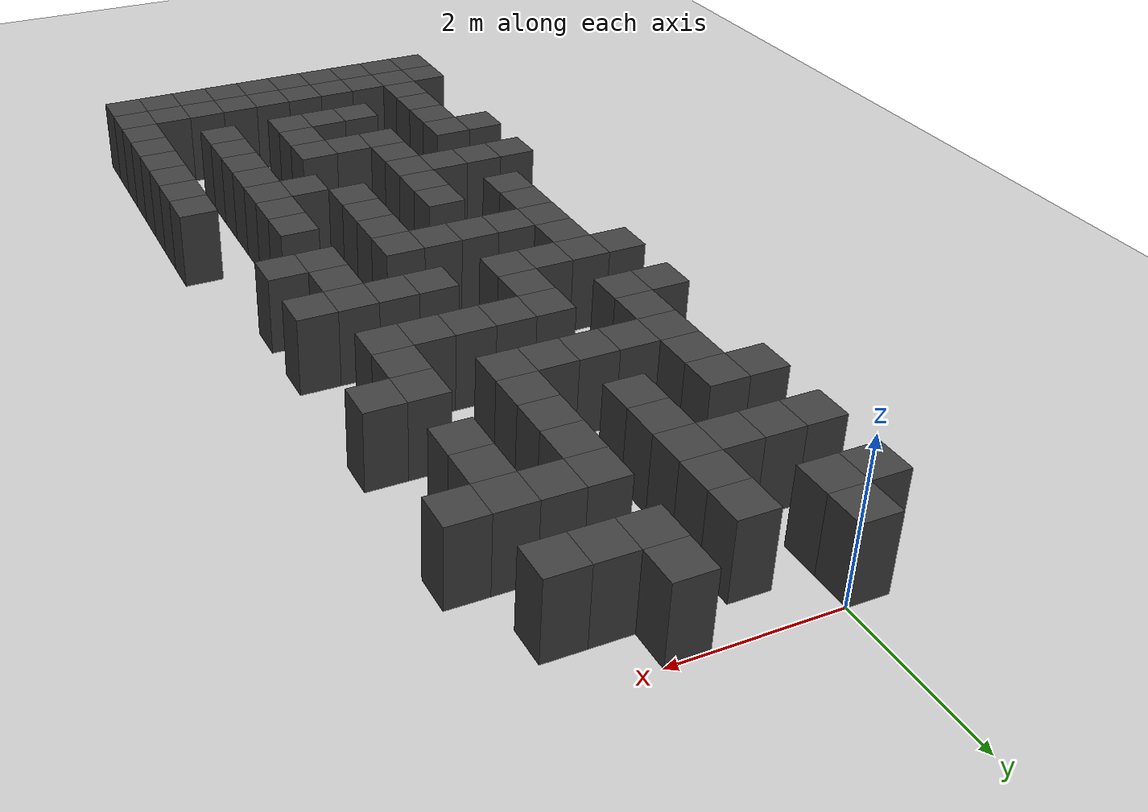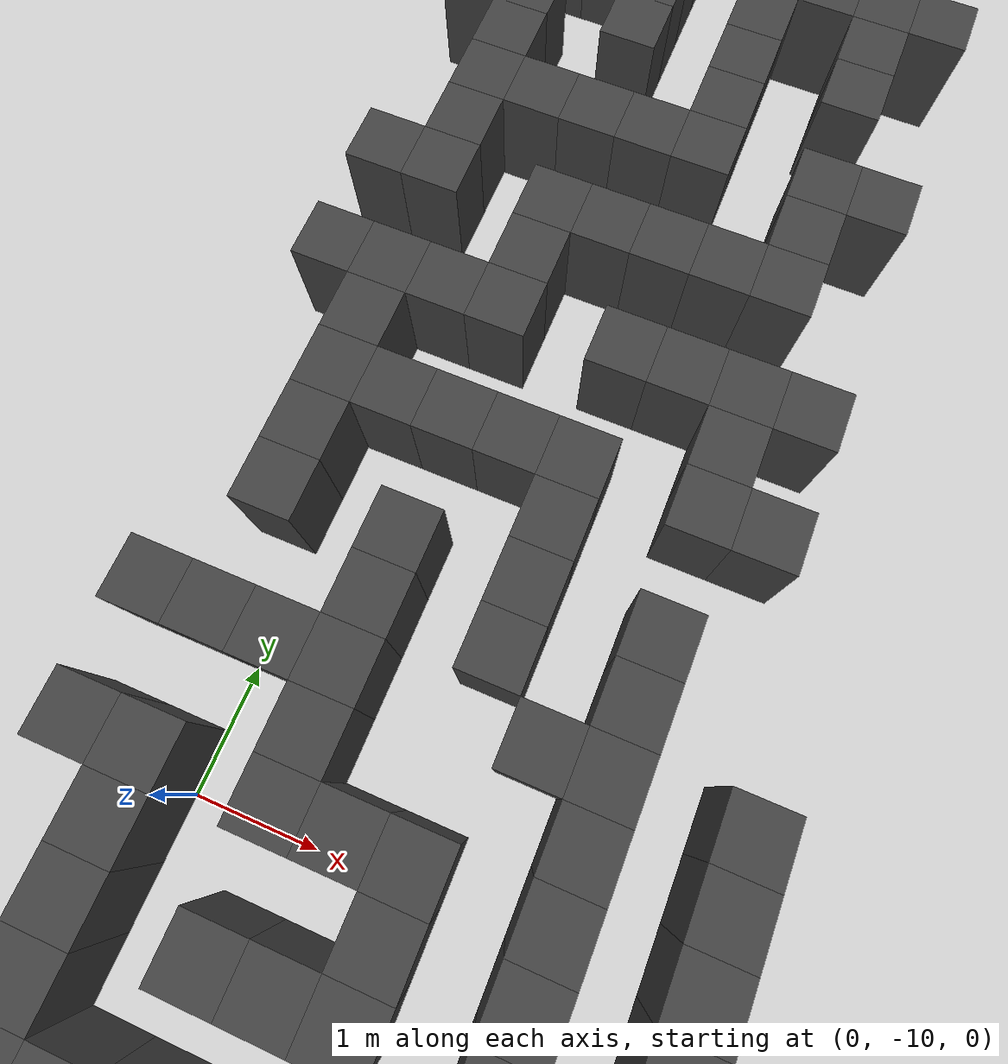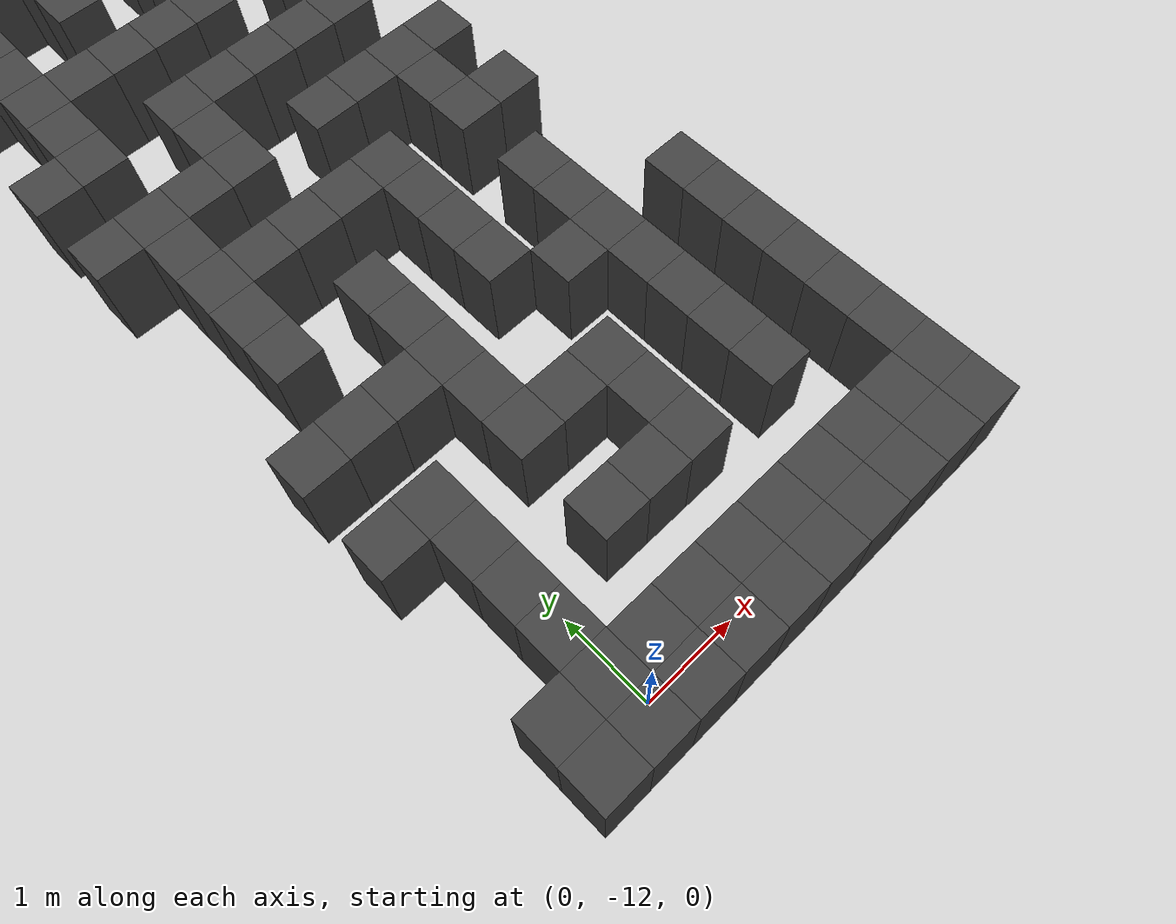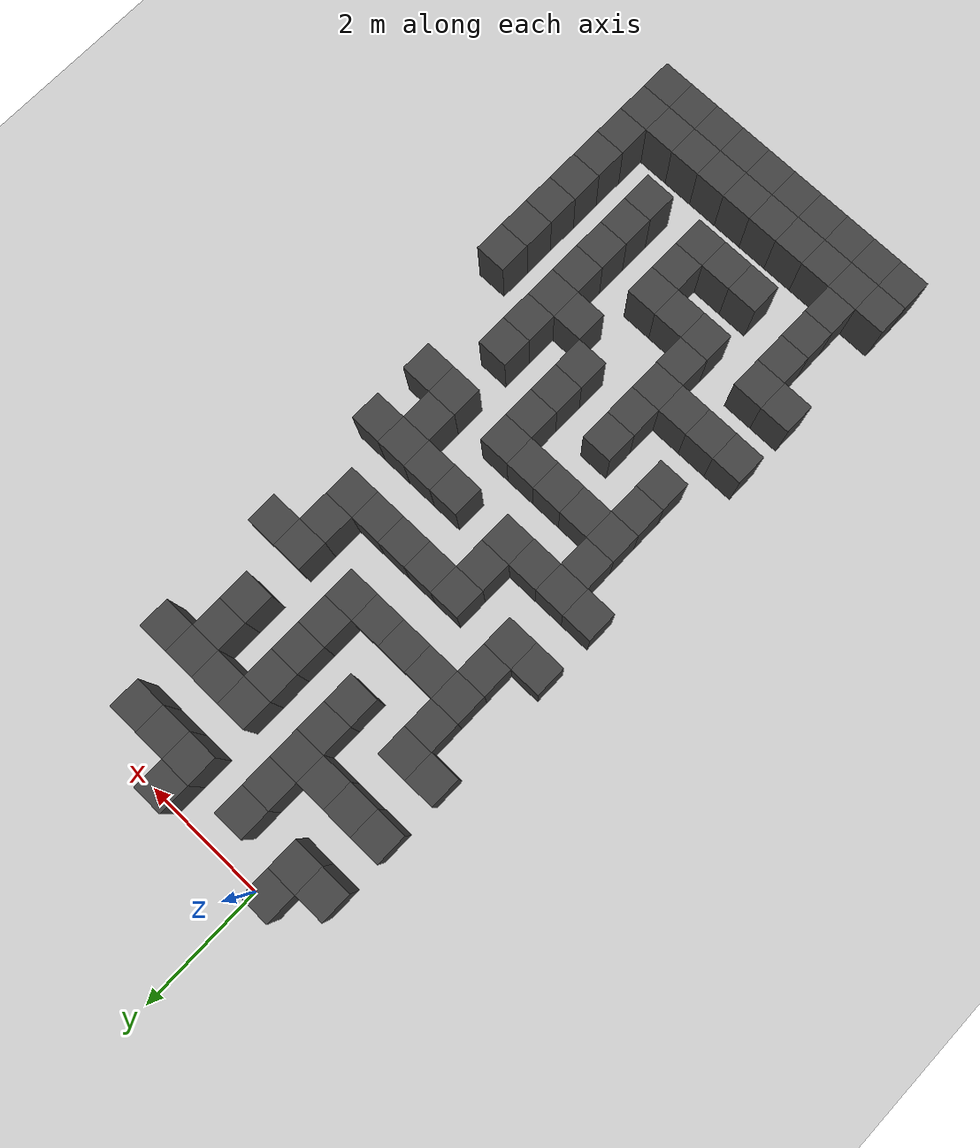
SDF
<sdf version="1.7">
 <world name="map_18814">
  <model name="ground_plane">
   <static>true</static>
   <link name="link">
    <collision name="collision">
     <geometry><plane><normal>0 0 1</normal><size>200 200</size></plane></geometry>
    </collision>
    <visual name="visual">
     <geometry><plane><normal>0 0 1</normal><size>200 200</size></plane></geometry>
     <material><ambient>0.8 0.8 0.8 1</ambient><diffuse>0.8 0.8 0.8 1</diffuse></material>
    </visual>
   </link>
  </model>
  <model name="maze_environment">
   <static>true</static>
   <link name="wall_654">
    <pose>-0.250 -0.250 0.500 0 0 0</pose>
    <collision name="col"><geometry><box><size>0.5 0.5 1.0</size></box></geometry></collision>
    <visual name="vis">
     <geometry><box><size>0.5 0.5 1.0</size></box></geometry>
     <material><ambient>0.15 0.15 0.15 1</ambient><diffuse>0.25 0.25 0.25 1</diffuse></material>
    </visual>
   </link>
   <link name="wall_655">
    <pose>1.750 -0.250 0.500 0 0 0</pose>
    <collision name="col"><geometry><box><size>0.5 0.5 1.0</size></box></geometry></collision>
    <visual name="vis">
     <geometry><box><size>0.5 0.5 1.0</size></box></geometry>
     <material><ambient>0.15 0.15 0.15 1</ambient><diffuse>0.25 0.25 0.25 1</diffuse></material>
    </visual>
   </link>
   <link name="wall_676">
    <pose>-0.750 -0.750 0.500 0 0 0</pose>
    <collision name="col"><geometry><box><size>0.5 0.5 1.0</size></box></geometry></collision>
    <visual name="vis">
     <geometry><box><size>0.5 0.5 1.0</size></box></geometry>
     <material><ambient>0.15 0.15 0.15 1</ambient><diffuse>0.25 0.25 0.25 1</diffuse></material>
    </visual>
   </link>
   <link name="wall_677">
    <pose>-0.250 -0.750 0.500 0 0 0</pose>
    <collision name="col"><geometry><box><size>0.5 0.5 1.0</size></box></geometry></collision>
    <visual name="vis">
     <geometry><box><size>0.5 0.5 1.0</size></box></geometry>
     <material><ambient>0.15 0.15 0.15 1</ambient><diffuse>0.25 0.25 0.25 1</diffuse></material>
    </visual>
   </link>
   <link name="wall_678">
    <pose>0.750 -0.750 0.500 0 0 0</pose>
    <collision name="col"><geometry><box><size>0.5 0.5 1.0</size></box></geometry></collision>
    <visual name="vis">
     <geometry><box><size>0.5 0.5 1.0</size></box></geometry>
     <material><ambient>0.15 0.15 0.15 1</ambient><diffuse>0.25 0.25 0.25 1</diffuse></material>
    </visual>
   </link>
   <link name="wall_679">
    <pose>1.750 -0.750 0.500 0 0 0</pose>
    <collision name="col"><geometry><box><size>0.5 0.5 1.0</size></box></geometry></collision>
    <visual name="vis">
     <geometry><box><size>0.5 0.5 1.0</size></box></geometry>
     <material><ambient>0.15 0.15 0.15 1</ambient><diffuse>0.25 0.25 0.25 1</diffuse></material>
    </visual>
   </link>
   <link name="wall_680">
    <pose>2.250 -0.750 0.500 0 0 0</pose>
    <collision name="col"><geometry><box><size>0.5 0.5 1.0</size></box></geometry></collision>
    <visual name="vis">
     <geometry><box><size>0.5 0.5 1.0</size></box></geometry>
     <material><ambient>0.15 0.15 0.15 1</ambient><diffuse>0.25 0.25 0.25 1</diffuse></material>
    </visual>
   </link>
   <link name="wall_681">
    <pose>2.750 -0.750 0.500 0 0 0</pose>
    <collision name="col"><geometry><box><size>0.5 0.5 1.0</size></box></geometry></collision>
    <visual name="vis">
     <geometry><box><size>0.5 0.5 1.0</size></box></geometry>
     <material><ambient>0.15 0.15 0.15 1</ambient><diffuse>0.25 0.25 0.25 1</diffuse></material>
    </visual>
   </link>
   <link name="wall_704">
    <pose>0.750 -1.250 0.500 0 0 0</pose>
    <collision name="col"><geometry><box><size>0.5 0.5 1.0</size></box></geometry></collision>
    <visual name="vis">
     <geometry><box><size>0.5 0.5 1.0</size></box></geometry>
     <material><ambient>0.15 0.15 0.15 1</ambient><diffuse>0.25 0.25 0.25 1</diffuse></material>
    </visual>
   </link>
   <link name="wall_727">
    <pose>-0.750 -1.750 0.500 0 0 0</pose>
    <collision name="col"><geometry><box><size>0.5 0.5 1.0</size></box></geometry></collision>
    <visual name="vis">
     <geometry><box><size>0.5 0.5 1.0</size></box></geometry>
     <material><ambient>0.15 0.15 0.15 1</ambient><diffuse>0.25 0.25 0.25 1</diffuse></material>
    </visual>
   </link>
   <link name="wall_728">
    <pose>-0.250 -1.750 0.500 0 0 0</pose>
    <collision name="col"><geometry><box><size>0.5 0.5 1.0</size></box></geometry></collision>
    <visual name="vis">
     <geometry><box><size>0.5 0.5 1.0</size></box></geometry>
     <material><ambient>0.15 0.15 0.15 1</ambient><diffuse>0.25 0.25 0.25 1</diffuse></material>
    </visual>
   </link>
   <link name="wall_729">
    <pose>0.250 -1.750 0.500 0 0 0</pose>
    <collision name="col"><geometry><box><size>0.5 0.5 1.0</size></box></geometry></collision>
    <visual name="vis">
     <geometry><box><size>0.5 0.5 1.0</size></box></geometry>
     <material><ambient>0.15 0.15 0.15 1</ambient><diffuse>0.25 0.25 0.25 1</diffuse></material>
    </visual>
   </link>
   <link name="wall_730">
    <pose>0.750 -1.750 0.500 0 0 0</pose>
    <collision name="col"><geometry><box><size>0.5 0.5 1.0</size></box></geometry></collision>
    <visual name="vis">
     <geometry><box><size>0.5 0.5 1.0</size></box></geometry>
     <material><ambient>0.15 0.15 0.15 1</ambient><diffuse>0.25 0.25 0.25 1</diffuse></material>
    </visual>
   </link>
   <link name="wall_731">
    <pose>1.750 -1.750 0.500 0 0 0</pose>
    <collision name="col"><geometry><box><size>0.5 0.5 1.0</size></box></geometry></collision>
    <visual name="vis">
     <geometry><box><size>0.5 0.5 1.0</size></box></geometry>
     <material><ambient>0.15 0.15 0.15 1</ambient><diffuse>0.25 0.25 0.25 1</diffuse></material>
    </visual>
   </link>
   <link name="wall_732">
    <pose>2.250 -1.750 0.500 0 0 0</pose>
    <collision name="col"><geometry><box><size>0.5 0.5 1.0</size></box></geometry></collision>
    <visual name="vis">
     <geometry><box><size>0.5 0.5 1.0</size></box></geometry>
     <material><ambient>0.15 0.15 0.15 1</ambient><diffuse>0.25 0.25 0.25 1</diffuse></material>
    </visual>
   </link>
   <link name="wall_733">
    <pose>2.750 -1.750 0.500 0 0 0</pose>
    <collision name="col"><geometry><box><size>0.5 0.5 1.0</size></box></geometry></collision>
    <visual name="vis">
     <geometry><box><size>0.5 0.5 1.0</size></box></geometry>
     <material><ambient>0.15 0.15 0.15 1</ambient><diffuse>0.25 0.25 0.25 1</diffuse></material>
    </visual>
   </link>
   <link name="wall_734">
    <pose>3.250 -1.750 0.500 0 0 0</pose>
    <collision name="col"><geometry><box><size>0.5 0.5 1.0</size></box></geometry></collision>
    <visual name="vis">
     <geometry><box><size>0.5 0.5 1.0</size></box></geometry>
     <material><ambient>0.15 0.15 0.15 1</ambient><diffuse>0.25 0.25 0.25 1</diffuse></material>
    </visual>
   </link>
   <link name="wall_753">
    <pose>0.750 -2.250 0.500 0 0 0</pose>
    <collision name="col"><geometry><box><size>0.5 0.5 1.0</size></box></geometry></collision>
    <visual name="vis">
     <geometry><box><size>0.5 0.5 1.0</size></box></geometry>
     <material><ambient>0.15 0.15 0.15 1</ambient><diffuse>0.25 0.25 0.25 1</diffuse></material>
    </visual>
   </link>
   <link name="wall_754">
    <pose>1.750 -2.250 0.500 0 0 0</pose>
    <collision name="col"><geometry><box><size>0.5 0.5 1.0</size></box></geometry></collision>
    <visual name="vis">
     <geometry><box><size>0.5 0.5 1.0</size></box></geometry>
     <material><ambient>0.15 0.15 0.15 1</ambient><diffuse>0.25 0.25 0.25 1</diffuse></material>
    </visual>
   </link>
   <link name="wall_755">
    <pose>2.750 -2.250 0.500 0 0 0</pose>
    <collision name="col"><geometry><box><size>0.5 0.5 1.0</size></box></geometry></collision>
    <visual name="vis">
     <geometry><box><size>0.5 0.5 1.0</size></box></geometry>
     <material><ambient>0.15 0.15 0.15 1</ambient><diffuse>0.25 0.25 0.25 1</diffuse></material>
    </visual>
   </link>
   <link name="wall_783">
    <pose>-0.750 -2.750 0.500 0 0 0</pose>
    <collision name="col"><geometry><box><size>0.5 0.5 1.0</size></box></geometry></collision>
    <visual name="vis">
     <geometry><box><size>0.5 0.5 1.0</size></box></geometry>
     <material><ambient>0.15 0.15 0.15 1</ambient><diffuse>0.25 0.25 0.25 1</diffuse></material>
    </visual>
   </link>
   <link name="wall_784">
    <pose>-0.250 -2.750 0.500 0 0 0</pose>
    <collision name="col"><geometry><box><size>0.5 0.5 1.0</size></box></geometry></collision>
    <visual name="vis">
     <geometry><box><size>0.5 0.5 1.0</size></box></geometry>
     <material><ambient>0.15 0.15 0.15 1</ambient><diffuse>0.25 0.25 0.25 1</diffuse></material>
    </visual>
   </link>
   <link name="wall_785">
    <pose>0.750 -2.750 0.500 0 0 0</pose>
    <collision name="col"><geometry><box><size>0.5 0.5 1.0</size></box></geometry></collision>
    <visual name="vis">
     <geometry><box><size>0.5 0.5 1.0</size></box></geometry>
     <material><ambient>0.15 0.15 0.15 1</ambient><diffuse>0.25 0.25 0.25 1</diffuse></material>
    </visual>
   </link>
   <link name="wall_786">
    <pose>1.750 -2.750 0.500 0 0 0</pose>
    <collision name="col"><geometry><box><size>0.5 0.5 1.0</size></box></geometry></collision>
    <visual name="vis">
     <geometry><box><size>0.5 0.5 1.0</size></box></geometry>
     <material><ambient>0.15 0.15 0.15 1</ambient><diffuse>0.25 0.25 0.25 1</diffuse></material>
    </visual>
   </link>
   <link name="wall_787">
    <pose>2.750 -2.750 0.500 0 0 0</pose>
    <collision name="col"><geometry><box><size>0.5 0.5 1.0</size></box></geometry></collision>
    <visual name="vis">
     <geometry><box><size>0.5 0.5 1.0</size></box></geometry>
     <material><ambient>0.15 0.15 0.15 1</ambient><diffuse>0.25 0.25 0.25 1</diffuse></material>
    </visual>
   </link>
   <link name="wall_805">
    <pose>-0.250 -3.250 0.500 0 0 0</pose>
    <collision name="col"><geometry><box><size>0.5 0.5 1.0</size></box></geometry></collision>
    <visual name="vis">
     <geometry><box><size>0.5 0.5 1.0</size></box></geometry>
     <material><ambient>0.15 0.15 0.15 1</ambient><diffuse>0.25 0.25 0.25 1</diffuse></material>
    </visual>
   </link>
   <link name="wall_806">
    <pose>1.750 -3.250 0.500 0 0 0</pose>
    <collision name="col"><geometry><box><size>0.5 0.5 1.0</size></box></geometry></collision>
    <visual name="vis">
     <geometry><box><size>0.5 0.5 1.0</size></box></geometry>
     <material><ambient>0.15 0.15 0.15 1</ambient><diffuse>0.25 0.25 0.25 1</diffuse></material>
    </visual>
   </link>
   <link name="wall_829">
    <pose>-0.250 -3.750 0.500 0 0 0</pose>
    <collision name="col"><geometry><box><size>0.5 0.5 1.0</size></box></geometry></collision>
    <visual name="vis">
     <geometry><box><size>0.5 0.5 1.0</size></box></geometry>
     <material><ambient>0.15 0.15 0.15 1</ambient><diffuse>0.25 0.25 0.25 1</diffuse></material>
    </visual>
   </link>
   <link name="wall_830">
    <pose>0.250 -3.750 0.500 0 0 0</pose>
    <collision name="col"><geometry><box><size>0.5 0.5 1.0</size></box></geometry></collision>
    <visual name="vis">
     <geometry><box><size>0.5 0.5 1.0</size></box></geometry>
     <material><ambient>0.15 0.15 0.15 1</ambient><diffuse>0.25 0.25 0.25 1</diffuse></material>
    </visual>
   </link>
   <link name="wall_831">
    <pose>0.750 -3.750 0.500 0 0 0</pose>
    <collision name="col"><geometry><box><size>0.5 0.5 1.0</size></box></geometry></collision>
    <visual name="vis">
     <geometry><box><size>0.5 0.5 1.0</size></box></geometry>
     <material><ambient>0.15 0.15 0.15 1</ambient><diffuse>0.25 0.25 0.25 1</diffuse></material>
    </visual>
   </link>
   <link name="wall_832">
    <pose>1.250 -3.750 0.500 0 0 0</pose>
    <collision name="col"><geometry><box><size>0.5 0.5 1.0</size></box></geometry></collision>
    <visual name="vis">
     <geometry><box><size>0.5 0.5 1.0</size></box></geometry>
     <material><ambient>0.15 0.15 0.15 1</ambient><diffuse>0.25 0.25 0.25 1</diffuse></material>
    </visual>
   </link>
   <link name="wall_833">
    <pose>1.750 -3.750 0.500 0 0 0</pose>
    <collision name="col"><geometry><box><size>0.5 0.5 1.0</size></box></geometry></collision>
    <visual name="vis">
     <geometry><box><size>0.5 0.5 1.0</size></box></geometry>
     <material><ambient>0.15 0.15 0.15 1</ambient><diffuse>0.25 0.25 0.25 1</diffuse></material>
    </visual>
   </link>
   <link name="wall_834">
    <pose>2.750 -3.750 0.500 0 0 0</pose>
    <collision name="col"><geometry><box><size>0.5 0.5 1.0</size></box></geometry></collision>
    <visual name="vis">
     <geometry><box><size>0.5 0.5 1.0</size></box></geometry>
     <material><ambient>0.15 0.15 0.15 1</ambient><diffuse>0.25 0.25 0.25 1</diffuse></material>
    </visual>
   </link>
   <link name="wall_835">
    <pose>3.250 -3.750 0.500 0 0 0</pose>
    <collision name="col"><geometry><box><size>0.5 0.5 1.0</size></box></geometry></collision>
    <visual name="vis">
     <geometry><box><size>0.5 0.5 1.0</size></box></geometry>
     <material><ambient>0.15 0.15 0.15 1</ambient><diffuse>0.25 0.25 0.25 1</diffuse></material>
    </visual>
   </link>
   <link name="wall_856">
    <pose>-0.250 -4.250 0.500 0 0 0</pose>
    <collision name="col"><geometry><box><size>0.5 0.5 1.0</size></box></geometry></collision>
    <visual name="vis">
     <geometry><box><size>0.5 0.5 1.0</size></box></geometry>
     <material><ambient>0.15 0.15 0.15 1</ambient><diffuse>0.25 0.25 0.25 1</diffuse></material>
    </visual>
   </link>
   <link name="wall_857">
    <pose>2.750 -4.250 0.500 0 0 0</pose>
    <collision name="col"><geometry><box><size>0.5 0.5 1.0</size></box></geometry></collision>
    <visual name="vis">
     <geometry><box><size>0.5 0.5 1.0</size></box></geometry>
     <material><ambient>0.15 0.15 0.15 1</ambient><diffuse>0.25 0.25 0.25 1</diffuse></material>
    </visual>
   </link>
   <link name="wall_878">
    <pose>-0.750 -4.750 0.500 0 0 0</pose>
    <collision name="col"><geometry><box><size>0.5 0.5 1.0</size></box></geometry></collision>
    <visual name="vis">
     <geometry><box><size>0.5 0.5 1.0</size></box></geometry>
     <material><ambient>0.15 0.15 0.15 1</ambient><diffuse>0.25 0.25 0.25 1</diffuse></material>
    </visual>
   </link>
   <link name="wall_879">
    <pose>-0.250 -4.750 0.500 0 0 0</pose>
    <collision name="col"><geometry><box><size>0.5 0.5 1.0</size></box></geometry></collision>
    <visual name="vis">
     <geometry><box><size>0.5 0.5 1.0</size></box></geometry>
     <material><ambient>0.15 0.15 0.15 1</ambient><diffuse>0.25 0.25 0.25 1</diffuse></material>
    </visual>
   </link>
   <link name="wall_880">
    <pose>0.750 -4.750 0.500 0 0 0</pose>
    <collision name="col"><geometry><box><size>0.5 0.5 1.0</size></box></geometry></collision>
    <visual name="vis">
     <geometry><box><size>0.5 0.5 1.0</size></box></geometry>
     <material><ambient>0.15 0.15 0.15 1</ambient><diffuse>0.25 0.25 0.25 1</diffuse></material>
    </visual>
   </link>
   <link name="wall_881">
    <pose>1.250 -4.750 0.500 0 0 0</pose>
    <collision name="col"><geometry><box><size>0.5 0.5 1.0</size></box></geometry></collision>
    <visual name="vis">
     <geometry><box><size>0.5 0.5 1.0</size></box></geometry>
     <material><ambient>0.15 0.15 0.15 1</ambient><diffuse>0.25 0.25 0.25 1</diffuse></material>
    </visual>
   </link>
   <link name="wall_882">
    <pose>1.750 -4.750 0.500 0 0 0</pose>
    <collision name="col"><geometry><box><size>0.5 0.5 1.0</size></box></geometry></collision>
    <visual name="vis">
     <geometry><box><size>0.5 0.5 1.0</size></box></geometry>
     <material><ambient>0.15 0.15 0.15 1</ambient><diffuse>0.25 0.25 0.25 1</diffuse></material>
    </visual>
   </link>
   <link name="wall_883">
    <pose>2.250 -4.750 0.500 0 0 0</pose>
    <collision name="col"><geometry><box><size>0.5 0.5 1.0</size></box></geometry></collision>
    <visual name="vis">
     <geometry><box><size>0.5 0.5 1.0</size></box></geometry>
     <material><ambient>0.15 0.15 0.15 1</ambient><diffuse>0.25 0.25 0.25 1</diffuse></material>
    </visual>
   </link>
   <link name="wall_884">
    <pose>2.750 -4.750 0.500 0 0 0</pose>
    <collision name="col"><geometry><box><size>0.5 0.5 1.0</size></box></geometry></collision>
    <visual name="vis">
     <geometry><box><size>0.5 0.5 1.0</size></box></geometry>
     <material><ambient>0.15 0.15 0.15 1</ambient><diffuse>0.25 0.25 0.25 1</diffuse></material>
    </visual>
   </link>
   <link name="wall_908">
    <pose>0.750 -5.250 0.500 0 0 0</pose>
    <collision name="col"><geometry><box><size>0.5 0.5 1.0</size></box></geometry></collision>
    <visual name="vis">
     <geometry><box><size>0.5 0.5 1.0</size></box></geometry>
     <material><ambient>0.15 0.15 0.15 1</ambient><diffuse>0.25 0.25 0.25 1</diffuse></material>
    </visual>
   </link>
   <link name="wall_928">
    <pose>-0.750 -5.750 0.500 0 0 0</pose>
    <collision name="col"><geometry><box><size>0.5 0.5 1.0</size></box></geometry></collision>
    <visual name="vis">
     <geometry><box><size>0.5 0.5 1.0</size></box></geometry>
     <material><ambient>0.15 0.15 0.15 1</ambient><diffuse>0.25 0.25 0.25 1</diffuse></material>
    </visual>
   </link>
   <link name="wall_929">
    <pose>-0.250 -5.750 0.500 0 0 0</pose>
    <collision name="col"><geometry><box><size>0.5 0.5 1.0</size></box></geometry></collision>
    <visual name="vis">
     <geometry><box><size>0.5 0.5 1.0</size></box></geometry>
     <material><ambient>0.15 0.15 0.15 1</ambient><diffuse>0.25 0.25 0.25 1</diffuse></material>
    </visual>
   </link>
   <link name="wall_930">
    <pose>0.250 -5.750 0.500 0 0 0</pose>
    <collision name="col"><geometry><box><size>0.5 0.5 1.0</size></box></geometry></collision>
    <visual name="vis">
     <geometry><box><size>0.5 0.5 1.0</size></box></geometry>
     <material><ambient>0.15 0.15 0.15 1</ambient><diffuse>0.25 0.25 0.25 1</diffuse></material>
    </visual>
   </link>
   <link name="wall_931">
    <pose>0.750 -5.750 0.500 0 0 0</pose>
    <collision name="col"><geometry><box><size>0.5 0.5 1.0</size></box></geometry></collision>
    <visual name="vis">
     <geometry><box><size>0.5 0.5 1.0</size></box></geometry>
     <material><ambient>0.15 0.15 0.15 1</ambient><diffuse>0.25 0.25 0.25 1</diffuse></material>
    </visual>
   </link>
   <link name="wall_932">
    <pose>1.750 -5.750 0.500 0 0 0</pose>
    <collision name="col"><geometry><box><size>0.5 0.5 1.0</size></box></geometry></collision>
    <visual name="vis">
     <geometry><box><size>0.5 0.5 1.0</size></box></geometry>
     <material><ambient>0.15 0.15 0.15 1</ambient><diffuse>0.25 0.25 0.25 1</diffuse></material>
    </visual>
   </link>
   <link name="wall_933">
    <pose>2.250 -5.750 0.500 0 0 0</pose>
    <collision name="col"><geometry><box><size>0.5 0.5 1.0</size></box></geometry></collision>
    <visual name="vis">
     <geometry><box><size>0.5 0.5 1.0</size></box></geometry>
     <material><ambient>0.15 0.15 0.15 1</ambient><diffuse>0.25 0.25 0.25 1</diffuse></material>
    </visual>
   </link>
   <link name="wall_934">
    <pose>2.750 -5.750 0.500 0 0 0</pose>
    <collision name="col"><geometry><box><size>0.5 0.5 1.0</size></box></geometry></collision>
    <visual name="vis">
     <geometry><box><size>0.5 0.5 1.0</size></box></geometry>
     <material><ambient>0.15 0.15 0.15 1</ambient><diffuse>0.25 0.25 0.25 1</diffuse></material>
    </visual>
   </link>
   <link name="wall_935">
    <pose>3.250 -5.750 0.500 0 0 0</pose>
    <collision name="col"><geometry><box><size>0.5 0.5 1.0</size></box></geometry></collision>
    <visual name="vis">
     <geometry><box><size>0.5 0.5 1.0</size></box></geometry>
     <material><ambient>0.15 0.15 0.15 1</ambient><diffuse>0.25 0.25 0.25 1</diffuse></material>
    </visual>
   </link>
   <link name="wall_958">
    <pose>-0.250 -6.250 0.500 0 0 0</pose>
    <collision name="col"><geometry><box><size>0.5 0.5 1.0</size></box></geometry></collision>
    <visual name="vis">
     <geometry><box><size>0.5 0.5 1.0</size></box></geometry>
     <material><ambient>0.15 0.15 0.15 1</ambient><diffuse>0.25 0.25 0.25 1</diffuse></material>
    </visual>
   </link>
   <link name="wall_959">
    <pose>2.750 -6.250 0.500 0 0 0</pose>
    <collision name="col"><geometry><box><size>0.5 0.5 1.0</size></box></geometry></collision>
    <visual name="vis">
     <geometry><box><size>0.5 0.5 1.0</size></box></geometry>
     <material><ambient>0.15 0.15 0.15 1</ambient><diffuse>0.25 0.25 0.25 1</diffuse></material>
    </visual>
   </link>
   <link name="wall_982">
    <pose>-0.250 -6.750 0.500 0 0 0</pose>
    <collision name="col"><geometry><box><size>0.5 0.5 1.0</size></box></geometry></collision>
    <visual name="vis">
     <geometry><box><size>0.5 0.5 1.0</size></box></geometry>
     <material><ambient>0.15 0.15 0.15 1</ambient><diffuse>0.25 0.25 0.25 1</diffuse></material>
    </visual>
   </link>
   <link name="wall_983">
    <pose>0.250 -6.750 0.500 0 0 0</pose>
    <collision name="col"><geometry><box><size>0.5 0.5 1.0</size></box></geometry></collision>
    <visual name="vis">
     <geometry><box><size>0.5 0.5 1.0</size></box></geometry>
     <material><ambient>0.15 0.15 0.15 1</ambient><diffuse>0.25 0.25 0.25 1</diffuse></material>
    </visual>
   </link>
   <link name="wall_984">
    <pose>0.750 -6.750 0.500 0 0 0</pose>
    <collision name="col"><geometry><box><size>0.5 0.5 1.0</size></box></geometry></collision>
    <visual name="vis">
     <geometry><box><size>0.5 0.5 1.0</size></box></geometry>
     <material><ambient>0.15 0.15 0.15 1</ambient><diffuse>0.25 0.25 0.25 1</diffuse></material>
    </visual>
   </link>
   <link name="wall_985">
    <pose>1.250 -6.750 0.500 0 0 0</pose>
    <collision name="col"><geometry><box><size>0.5 0.5 1.0</size></box></geometry></collision>
    <visual name="vis">
     <geometry><box><size>0.5 0.5 1.0</size></box></geometry>
     <material><ambient>0.15 0.15 0.15 1</ambient><diffuse>0.25 0.25 0.25 1</diffuse></material>
    </visual>
   </link>
   <link name="wall_986">
    <pose>1.750 -6.750 0.500 0 0 0</pose>
    <collision name="col"><geometry><box><size>0.5 0.5 1.0</size></box></geometry></collision>
    <visual name="vis">
     <geometry><box><size>0.5 0.5 1.0</size></box></geometry>
     <material><ambient>0.15 0.15 0.15 1</ambient><diffuse>0.25 0.25 0.25 1</diffuse></material>
    </visual>
   </link>
   <link name="wall_987">
    <pose>2.750 -6.750 0.500 0 0 0</pose>
    <collision name="col"><geometry><box><size>0.5 0.5 1.0</size></box></geometry></collision>
    <visual name="vis">
     <geometry><box><size>0.5 0.5 1.0</size></box></geometry>
     <material><ambient>0.15 0.15 0.15 1</ambient><diffuse>0.25 0.25 0.25 1</diffuse></material>
    </visual>
   </link>
   <link name="wall_988">
    <pose>3.250 -6.750 0.500 0 0 0</pose>
    <collision name="col"><geometry><box><size>0.5 0.5 1.0</size></box></geometry></collision>
    <visual name="vis">
     <geometry><box><size>0.5 0.5 1.0</size></box></geometry>
     <material><ambient>0.15 0.15 0.15 1</ambient><diffuse>0.25 0.25 0.25 1</diffuse></material>
    </visual>
   </link>
   <link name="wall_1006">
    <pose>-0.250 -7.250 0.500 0 0 0</pose>
    <collision name="col"><geometry><box><size>0.5 0.5 1.0</size></box></geometry></collision>
    <visual name="vis">
     <geometry><box><size>0.5 0.5 1.0</size></box></geometry>
     <material><ambient>0.15 0.15 0.15 1</ambient><diffuse>0.25 0.25 0.25 1</diffuse></material>
    </visual>
   </link>
   <link name="wall_1007">
    <pose>1.750 -7.250 0.500 0 0 0</pose>
    <collision name="col"><geometry><box><size>0.5 0.5 1.0</size></box></geometry></collision>
    <visual name="vis">
     <geometry><box><size>0.5 0.5 1.0</size></box></geometry>
     <material><ambient>0.15 0.15 0.15 1</ambient><diffuse>0.25 0.25 0.25 1</diffuse></material>
    </visual>
   </link>
   <link name="wall_1033">
    <pose>-0.250 -7.750 0.500 0 0 0</pose>
    <collision name="col"><geometry><box><size>0.5 0.5 1.0</size></box></geometry></collision>
    <visual name="vis">
     <geometry><box><size>0.5 0.5 1.0</size></box></geometry>
     <material><ambient>0.15 0.15 0.15 1</ambient><diffuse>0.25 0.25 0.25 1</diffuse></material>
    </visual>
   </link>
   <link name="wall_1034">
    <pose>0.750 -7.750 0.500 0 0 0</pose>
    <collision name="col"><geometry><box><size>0.5 0.5 1.0</size></box></geometry></collision>
    <visual name="vis">
     <geometry><box><size>0.5 0.5 1.0</size></box></geometry>
     <material><ambient>0.15 0.15 0.15 1</ambient><diffuse>0.25 0.25 0.25 1</diffuse></material>
    </visual>
   </link>
   <link name="wall_1035">
    <pose>1.750 -7.750 0.500 0 0 0</pose>
    <collision name="col"><geometry><box><size>0.5 0.5 1.0</size></box></geometry></collision>
    <visual name="vis">
     <geometry><box><size>0.5 0.5 1.0</size></box></geometry>
     <material><ambient>0.15 0.15 0.15 1</ambient><diffuse>0.25 0.25 0.25 1</diffuse></material>
    </visual>
   </link>
   <link name="wall_1036">
    <pose>2.750 -7.750 0.500 0 0 0</pose>
    <collision name="col"><geometry><box><size>0.5 0.5 1.0</size></box></geometry></collision>
    <visual name="vis">
     <geometry><box><size>0.5 0.5 1.0</size></box></geometry>
     <material><ambient>0.15 0.15 0.15 1</ambient><diffuse>0.25 0.25 0.25 1</diffuse></material>
    </visual>
   </link>
   <link name="wall_1057">
    <pose>0.750 -8.250 0.500 0 0 0</pose>
    <collision name="col"><geometry><box><size>0.5 0.5 1.0</size></box></geometry></collision>
    <visual name="vis">
     <geometry><box><size>0.5 0.5 1.0</size></box></geometry>
     <material><ambient>0.15 0.15 0.15 1</ambient><diffuse>0.25 0.25 0.25 1</diffuse></material>
    </visual>
   </link>
   <link name="wall_1058">
    <pose>1.750 -8.250 0.500 0 0 0</pose>
    <collision name="col"><geometry><box><size>0.5 0.5 1.0</size></box></geometry></collision>
    <visual name="vis">
     <geometry><box><size>0.5 0.5 1.0</size></box></geometry>
     <material><ambient>0.15 0.15 0.15 1</ambient><diffuse>0.25 0.25 0.25 1</diffuse></material>
    </visual>
   </link>
   <link name="wall_1059">
    <pose>2.750 -8.250 0.500 0 0 0</pose>
    <collision name="col"><geometry><box><size>0.5 0.5 1.0</size></box></geometry></collision>
    <visual name="vis">
     <geometry><box><size>0.5 0.5 1.0</size></box></geometry>
     <material><ambient>0.15 0.15 0.15 1</ambient><diffuse>0.25 0.25 0.25 1</diffuse></material>
    </visual>
   </link>
   <link name="wall_1082">
    <pose>-0.750 -8.750 0.500 0 0 0</pose>
    <collision name="col"><geometry><box><size>0.5 0.5 1.0</size></box></geometry></collision>
    <visual name="vis">
     <geometry><box><size>0.5 0.5 1.0</size></box></geometry>
     <material><ambient>0.15 0.15 0.15 1</ambient><diffuse>0.25 0.25 0.25 1</diffuse></material>
    </visual>
   </link>
   <link name="wall_1083">
    <pose>-0.250 -8.750 0.500 0 0 0</pose>
    <collision name="col"><geometry><box><size>0.5 0.5 1.0</size></box></geometry></collision>
    <visual name="vis">
     <geometry><box><size>0.5 0.5 1.0</size></box></geometry>
     <material><ambient>0.15 0.15 0.15 1</ambient><diffuse>0.25 0.25 0.25 1</diffuse></material>
    </visual>
   </link>
   <link name="wall_1084">
    <pose>0.250 -8.750 0.500 0 0 0</pose>
    <collision name="col"><geometry><box><size>0.5 0.5 1.0</size></box></geometry></collision>
    <visual name="vis">
     <geometry><box><size>0.5 0.5 1.0</size></box></geometry>
     <material><ambient>0.15 0.15 0.15 1</ambient><diffuse>0.25 0.25 0.25 1</diffuse></material>
    </visual>
   </link>
   <link name="wall_1085">
    <pose>0.750 -8.750 0.500 0 0 0</pose>
    <collision name="col"><geometry><box><size>0.5 0.5 1.0</size></box></geometry></collision>
    <visual name="vis">
     <geometry><box><size>0.5 0.5 1.0</size></box></geometry>
     <material><ambient>0.15 0.15 0.15 1</ambient><diffuse>0.25 0.25 0.25 1</diffuse></material>
    </visual>
   </link>
   <link name="wall_1086">
    <pose>2.250 -8.750 0.500 0 0 0</pose>
    <collision name="col"><geometry><box><size>0.5 0.5 1.0</size></box></geometry></collision>
    <visual name="vis">
     <geometry><box><size>0.5 0.5 1.0</size></box></geometry>
     <material><ambient>0.15 0.15 0.15 1</ambient><diffuse>0.25 0.25 0.25 1</diffuse></material>
    </visual>
   </link>
   <link name="wall_1087">
    <pose>2.750 -8.750 0.500 0 0 0</pose>
    <collision name="col"><geometry><box><size>0.5 0.5 1.0</size></box></geometry></collision>
    <visual name="vis">
     <geometry><box><size>0.5 0.5 1.0</size></box></geometry>
     <material><ambient>0.15 0.15 0.15 1</ambient><diffuse>0.25 0.25 0.25 1</diffuse></material>
    </visual>
   </link>
   <link name="wall_1088">
    <pose>3.750 -8.750 0.500 0 0 0</pose>
    <collision name="col"><geometry><box><size>0.5 0.5 1.0</size></box></geometry></collision>
    <visual name="vis">
     <geometry><box><size>0.5 0.5 1.0</size></box></geometry>
     <material><ambient>0.15 0.15 0.15 1</ambient><diffuse>0.25 0.25 0.25 1</diffuse></material>
    </visual>
   </link>
   <link name="wall_1109">
    <pose>0.750 -9.250 0.500 0 0 0</pose>
    <collision name="col"><geometry><box><size>0.5 0.5 1.0</size></box></geometry></collision>
    <visual name="vis">
     <geometry><box><size>0.5 0.5 1.0</size></box></geometry>
     <material><ambient>0.15 0.15 0.15 1</ambient><diffuse>0.25 0.25 0.25 1</diffuse></material>
    </visual>
   </link>
   <link name="wall_1110">
    <pose>2.750 -9.250 0.500 0 0 0</pose>
    <collision name="col"><geometry><box><size>0.5 0.5 1.0</size></box></geometry></collision>
    <visual name="vis">
     <geometry><box><size>0.5 0.5 1.0</size></box></geometry>
     <material><ambient>0.15 0.15 0.15 1</ambient><diffuse>0.25 0.25 0.25 1</diffuse></material>
    </visual>
   </link>
   <link name="wall_1111">
    <pose>3.750 -9.250 0.500 0 0 0</pose>
    <collision name="col"><geometry><box><size>0.5 0.5 1.0</size></box></geometry></collision>
    <visual name="vis">
     <geometry><box><size>0.5 0.5 1.0</size></box></geometry>
     <material><ambient>0.15 0.15 0.15 1</ambient><diffuse>0.25 0.25 0.25 1</diffuse></material>
    </visual>
   </link>
   <link name="wall_1133">
    <pose>-0.750 -9.750 0.500 0 0 0</pose>
    <collision name="col"><geometry><box><size>0.5 0.5 1.0</size></box></geometry></collision>
    <visual name="vis">
     <geometry><box><size>0.5 0.5 1.0</size></box></geometry>
     <material><ambient>0.15 0.15 0.15 1</ambient><diffuse>0.25 0.25 0.25 1</diffuse></material>
    </visual>
   </link>
   <link name="wall_1134">
    <pose>-0.250 -9.750 0.500 0 0 0</pose>
    <collision name="col"><geometry><box><size>0.5 0.5 1.0</size></box></geometry></collision>
    <visual name="vis">
     <geometry><box><size>0.5 0.5 1.0</size></box></geometry>
     <material><ambient>0.15 0.15 0.15 1</ambient><diffuse>0.25 0.25 0.25 1</diffuse></material>
    </visual>
   </link>
   <link name="wall_1135">
    <pose>0.750 -9.750 0.500 0 0 0</pose>
    <collision name="col"><geometry><box><size>0.5 0.5 1.0</size></box></geometry></collision>
    <visual name="vis">
     <geometry><box><size>0.5 0.5 1.0</size></box></geometry>
     <material><ambient>0.15 0.15 0.15 1</ambient><diffuse>0.25 0.25 0.25 1</diffuse></material>
    </visual>
   </link>
   <link name="wall_1136">
    <pose>1.250 -9.750 0.500 0 0 0</pose>
    <collision name="col"><geometry><box><size>0.5 0.5 1.0</size></box></geometry></collision>
    <visual name="vis">
     <geometry><box><size>0.5 0.5 1.0</size></box></geometry>
     <material><ambient>0.15 0.15 0.15 1</ambient><diffuse>0.25 0.25 0.25 1</diffuse></material>
    </visual>
   </link>
   <link name="wall_1137">
    <pose>1.750 -9.750 0.500 0 0 0</pose>
    <collision name="col"><geometry><box><size>0.5 0.5 1.0</size></box></geometry></collision>
    <visual name="vis">
     <geometry><box><size>0.5 0.5 1.0</size></box></geometry>
     <material><ambient>0.15 0.15 0.15 1</ambient><diffuse>0.25 0.25 0.25 1</diffuse></material>
    </visual>
   </link>
   <link name="wall_1138">
    <pose>2.750 -9.750 0.500 0 0 0</pose>
    <collision name="col"><geometry><box><size>0.5 0.5 1.0</size></box></geometry></collision>
    <visual name="vis">
     <geometry><box><size>0.5 0.5 1.0</size></box></geometry>
     <material><ambient>0.15 0.15 0.15 1</ambient><diffuse>0.25 0.25 0.25 1</diffuse></material>
    </visual>
   </link>
   <link name="wall_1139">
    <pose>3.750 -9.750 0.500 0 0 0</pose>
    <collision name="col"><geometry><box><size>0.5 0.5 1.0</size></box></geometry></collision>
    <visual name="vis">
     <geometry><box><size>0.5 0.5 1.0</size></box></geometry>
     <material><ambient>0.15 0.15 0.15 1</ambient><diffuse>0.25 0.25 0.25 1</diffuse></material>
    </visual>
   </link>
   <link name="wall_1160">
    <pose>-0.250 -10.250 0.500 0 0 0</pose>
    <collision name="col"><geometry><box><size>0.5 0.5 1.0</size></box></geometry></collision>
    <visual name="vis">
     <geometry><box><size>0.5 0.5 1.0</size></box></geometry>
     <material><ambient>0.15 0.15 0.15 1</ambient><diffuse>0.25 0.25 0.25 1</diffuse></material>
    </visual>
   </link>
   <link name="wall_1161">
    <pose>1.750 -10.250 0.500 0 0 0</pose>
    <collision name="col"><geometry><box><size>0.5 0.5 1.0</size></box></geometry></collision>
    <visual name="vis">
     <geometry><box><size>0.5 0.5 1.0</size></box></geometry>
     <material><ambient>0.15 0.15 0.15 1</ambient><diffuse>0.25 0.25 0.25 1</diffuse></material>
    </visual>
   </link>
   <link name="wall_1162">
    <pose>2.750 -10.250 0.500 0 0 0</pose>
    <collision name="col"><geometry><box><size>0.5 0.5 1.0</size></box></geometry></collision>
    <visual name="vis">
     <geometry><box><size>0.5 0.5 1.0</size></box></geometry>
     <material><ambient>0.15 0.15 0.15 1</ambient><diffuse>0.25 0.25 0.25 1</diffuse></material>
    </visual>
   </link>
   <link name="wall_1163">
    <pose>3.750 -10.250 0.500 0 0 0</pose>
    <collision name="col"><geometry><box><size>0.5 0.5 1.0</size></box></geometry></collision>
    <visual name="vis">
     <geometry><box><size>0.5 0.5 1.0</size></box></geometry>
     <material><ambient>0.15 0.15 0.15 1</ambient><diffuse>0.25 0.25 0.25 1</diffuse></material>
    </visual>
   </link>
   <link name="wall_1186">
    <pose>-0.250 -10.750 0.500 0 0 0</pose>
    <collision name="col"><geometry><box><size>0.5 0.5 1.0</size></box></geometry></collision>
    <visual name="vis">
     <geometry><box><size>0.5 0.5 1.0</size></box></geometry>
     <material><ambient>0.15 0.15 0.15 1</ambient><diffuse>0.25 0.25 0.25 1</diffuse></material>
    </visual>
   </link>
   <link name="wall_1187">
    <pose>0.750 -10.750 0.500 0 0 0</pose>
    <collision name="col"><geometry><box><size>0.5 0.5 1.0</size></box></geometry></collision>
    <visual name="vis">
     <geometry><box><size>0.5 0.5 1.0</size></box></geometry>
     <material><ambient>0.15 0.15 0.15 1</ambient><diffuse>0.25 0.25 0.25 1</diffuse></material>
    </visual>
   </link>
   <link name="wall_1188">
    <pose>1.250 -10.750 0.500 0 0 0</pose>
    <collision name="col"><geometry><box><size>0.5 0.5 1.0</size></box></geometry></collision>
    <visual name="vis">
     <geometry><box><size>0.5 0.5 1.0</size></box></geometry>
     <material><ambient>0.15 0.15 0.15 1</ambient><diffuse>0.25 0.25 0.25 1</diffuse></material>
    </visual>
   </link>
   <link name="wall_1189">
    <pose>1.750 -10.750 0.500 0 0 0</pose>
    <collision name="col"><geometry><box><size>0.5 0.5 1.0</size></box></geometry></collision>
    <visual name="vis">
     <geometry><box><size>0.5 0.5 1.0</size></box></geometry>
     <material><ambient>0.15 0.15 0.15 1</ambient><diffuse>0.25 0.25 0.25 1</diffuse></material>
    </visual>
   </link>
   <link name="wall_1190">
    <pose>2.750 -10.750 0.500 0 0 0</pose>
    <collision name="col"><geometry><box><size>0.5 0.5 1.0</size></box></geometry></collision>
    <visual name="vis">
     <geometry><box><size>0.5 0.5 1.0</size></box></geometry>
     <material><ambient>0.15 0.15 0.15 1</ambient><diffuse>0.25 0.25 0.25 1</diffuse></material>
    </visual>
   </link>
   <link name="wall_1191">
    <pose>3.750 -10.750 0.500 0 0 0</pose>
    <collision name="col"><geometry><box><size>0.5 0.5 1.0</size></box></geometry></collision>
    <visual name="vis">
     <geometry><box><size>0.5 0.5 1.0</size></box></geometry>
     <material><ambient>0.15 0.15 0.15 1</ambient><diffuse>0.25 0.25 0.25 1</diffuse></material>
    </visual>
   </link>
   <link name="wall_1205">
    <pose>-0.250 -11.250 0.500 0 0 0</pose>
    <collision name="col"><geometry><box><size>0.5 0.5 1.0</size></box></geometry></collision>
    <visual name="vis">
     <geometry><box><size>0.5 0.5 1.0</size></box></geometry>
     <material><ambient>0.15 0.15 0.15 1</ambient><diffuse>0.25 0.25 0.25 1</diffuse></material>
    </visual>
   </link>
   <link name="wall_1206">
    <pose>3.750 -11.250 0.500 0 0 0</pose>
    <collision name="col"><geometry><box><size>0.5 0.5 1.0</size></box></geometry></collision>
    <visual name="vis">
     <geometry><box><size>0.5 0.5 1.0</size></box></geometry>
     <material><ambient>0.15 0.15 0.15 1</ambient><diffuse>0.25 0.25 0.25 1</diffuse></material>
    </visual>
   </link>
   <link name="wall_1233">
    <pose>-0.750 -11.750 0.500 0 0 0</pose>
    <collision name="col"><geometry><box><size>0.5 0.5 1.0</size></box></geometry></collision>
    <visual name="vis">
     <geometry><box><size>0.5 0.5 1.0</size></box></geometry>
     <material><ambient>0.15 0.15 0.15 1</ambient><diffuse>0.25 0.25 0.25 1</diffuse></material>
    </visual>
   </link>
   <link name="wall_1234">
    <pose>-0.250 -11.750 0.500 0 0 0</pose>
    <collision name="col"><geometry><box><size>0.5 0.5 1.0</size></box></geometry></collision>
    <visual name="vis">
     <geometry><box><size>0.5 0.5 1.0</size></box></geometry>
     <material><ambient>0.15 0.15 0.15 1</ambient><diffuse>0.25 0.25 0.25 1</diffuse></material>
    </visual>
   </link>
   <link name="wall_1235">
    <pose>0.250 -11.750 0.500 0 0 0</pose>
    <collision name="col"><geometry><box><size>0.5 0.5 1.0</size></box></geometry></collision>
    <visual name="vis">
     <geometry><box><size>0.5 0.5 1.0</size></box></geometry>
     <material><ambient>0.15 0.15 0.15 1</ambient><diffuse>0.25 0.25 0.25 1</diffuse></material>
    </visual>
   </link>
   <link name="wall_1236">
    <pose>0.750 -11.750 0.500 0 0 0</pose>
    <collision name="col"><geometry><box><size>0.5 0.5 1.0</size></box></geometry></collision>
    <visual name="vis">
     <geometry><box><size>0.5 0.5 1.0</size></box></geometry>
     <material><ambient>0.15 0.15 0.15 1</ambient><diffuse>0.25 0.25 0.25 1</diffuse></material>
    </visual>
   </link>
   <link name="wall_1237">
    <pose>1.250 -11.750 0.500 0 0 0</pose>
    <collision name="col"><geometry><box><size>0.5 0.5 1.0</size></box></geometry></collision>
    <visual name="vis">
     <geometry><box><size>0.5 0.5 1.0</size></box></geometry>
     <material><ambient>0.15 0.15 0.15 1</ambient><diffuse>0.25 0.25 0.25 1</diffuse></material>
    </visual>
   </link>
   <link name="wall_1238">
    <pose>1.750 -11.750 0.500 0 0 0</pose>
    <collision name="col"><geometry><box><size>0.5 0.5 1.0</size></box></geometry></collision>
    <visual name="vis">
     <geometry><box><size>0.5 0.5 1.0</size></box></geometry>
     <material><ambient>0.15 0.15 0.15 1</ambient><diffuse>0.25 0.25 0.25 1</diffuse></material>
    </visual>
   </link>
   <link name="wall_1239">
    <pose>2.250 -11.750 0.500 0 0 0</pose>
    <collision name="col"><geometry><box><size>0.5 0.5 1.0</size></box></geometry></collision>
    <visual name="vis">
     <geometry><box><size>0.5 0.5 1.0</size></box></geometry>
     <material><ambient>0.15 0.15 0.15 1</ambient><diffuse>0.25 0.25 0.25 1</diffuse></material>
    </visual>
   </link>
   <link name="wall_1240">
    <pose>2.750 -11.750 0.500 0 0 0</pose>
    <collision name="col"><geometry><box><size>0.5 0.5 1.0</size></box></geometry></collision>
    <visual name="vis">
     <geometry><box><size>0.5 0.5 1.0</size></box></geometry>
     <material><ambient>0.15 0.15 0.15 1</ambient><diffuse>0.25 0.25 0.25 1</diffuse></material>
    </visual>
   </link>
   <link name="wall_1241">
    <pose>3.250 -11.750 0.500 0 0 0</pose>
    <collision name="col"><geometry><box><size>0.5 0.5 1.0</size></box></geometry></collision>
    <visual name="vis">
     <geometry><box><size>0.5 0.5 1.0</size></box></geometry>
     <material><ambient>0.15 0.15 0.15 1</ambient><diffuse>0.25 0.25 0.25 1</diffuse></material>
    </visual>
   </link>
   <link name="wall_1242">
    <pose>3.750 -11.750 0.500 0 0 0</pose>
    <collision name="col"><geometry><box><size>0.5 0.5 1.0</size></box></geometry></collision>
    <visual name="vis">
     <geometry><box><size>0.5 0.5 1.0</size></box></geometry>
     <material><ambient>0.15 0.15 0.15 1</ambient><diffuse>0.25 0.25 0.25 1</diffuse></material>
    </visual>
   </link>
   <link name="wall_1281">
    <pose>-0.750 -12.250 0.500 0 0 0</pose>
    <collision name="col"><geometry><box><size>0.5 0.5 1.0</size></box></geometry></collision>
    <visual name="vis">
     <geometry><box><size>0.5 0.5 1.0</size></box></geometry>
     <material><ambient>0.15 0.15 0.15 1</ambient><diffuse>0.25 0.25 0.25 1</diffuse></material>
    </visual>
   </link>
   <link name="wall_1282">
    <pose>-0.250 -12.250 0.500 0 0 0</pose>
    <collision name="col"><geometry><box><size>0.5 0.5 1.0</size></box></geometry></collision>
    <visual name="vis">
     <geometry><box><size>0.5 0.5 1.0</size></box></geometry>
     <material><ambient>0.15 0.15 0.15 1</ambient><diffuse>0.25 0.25 0.25 1</diffuse></material>
    </visual>
   </link>
   <link name="wall_1283">
    <pose>0.250 -12.250 0.500 0 0 0</pose>
    <collision name="col"><geometry><box><size>0.5 0.5 1.0</size></box></geometry></collision>
    <visual name="vis">
     <geometry><box><size>0.5 0.5 1.0</size></box></geometry>
     <material><ambient>0.15 0.15 0.15 1</ambient><diffuse>0.25 0.25 0.25 1</diffuse></material>
    </visual>
   </link>
   <link name="wall_1284">
    <pose>0.750 -12.250 0.500 0 0 0</pose>
    <collision name="col"><geometry><box><size>0.5 0.5 1.0</size></box></geometry></collision>
    <visual name="vis">
     <geometry><box><size>0.5 0.5 1.0</size></box></geometry>
     <material><ambient>0.15 0.15 0.15 1</ambient><diffuse>0.25 0.25 0.25 1</diffuse></material>
    </visual>
   </link>
   <link name="wall_1285">
    <pose>1.250 -12.250 0.500 0 0 0</pose>
    <collision name="col"><geometry><box><size>0.5 0.5 1.0</size></box></geometry></collision>
    <visual name="vis">
     <geometry><box><size>0.5 0.5 1.0</size></box></geometry>
     <material><ambient>0.15 0.15 0.15 1</ambient><diffuse>0.25 0.25 0.25 1</diffuse></material>
    </visual>
   </link>
   <link name="wall_1286">
    <pose>1.750 -12.250 0.500 0 0 0</pose>
    <collision name="col"><geometry><box><size>0.5 0.5 1.0</size></box></geometry></collision>
    <visual name="vis">
     <geometry><box><size>0.5 0.5 1.0</size></box></geometry>
     <material><ambient>0.15 0.15 0.15 1</ambient><diffuse>0.25 0.25 0.25 1</diffuse></material>
    </visual>
   </link>
   <link name="wall_1287">
    <pose>2.250 -12.250 0.500 0 0 0</pose>
    <collision name="col"><geometry><box><size>0.5 0.5 1.0</size></box></geometry></collision>
    <visual name="vis">
     <geometry><box><size>0.5 0.5 1.0</size></box></geometry>
     <material><ambient>0.15 0.15 0.15 1</ambient><diffuse>0.25 0.25 0.25 1</diffuse></material>
    </visual>
   </link>
   <link name="wall_1288">
    <pose>2.750 -12.250 0.500 0 0 0</pose>
    <collision name="col"><geometry><box><size>0.5 0.5 1.0</size></box></geometry></collision>
    <visual name="vis">
     <geometry><box><size>0.5 0.5 1.0</size></box></geometry>
     <material><ambient>0.15 0.15 0.15 1</ambient><diffuse>0.25 0.25 0.25 1</diffuse></material>
    </visual>
   </link>
   <link name="wall_1289">
    <pose>3.250 -12.250 0.500 0 0 0</pose>
    <collision name="col"><geometry><box><size>0.5 0.5 1.0</size></box></geometry></collision>
    <visual name="vis">
     <geometry><box><size>0.5 0.5 1.0</size></box></geometry>
     <material><ambient>0.15 0.15 0.15 1</ambient><diffuse>0.25 0.25 0.25 1</diffuse></material>
    </visual>
   </link>
   <link name="wall_1290">
    <pose>3.750 -12.250 0.500 0 0 0</pose>
    <collision name="col"><geometry><box><size>0.5 0.5 1.0</size></box></geometry></collision>
    <visual name="vis">
     <geometry><box><size>0.5 0.5 1.0</size></box></geometry>
     <material><ambient>0.15 0.15 0.15 1</ambient><diffuse>0.25 0.25 0.25 1</diffuse></material>
    </visual>
   </link>
  </model>
 </world>
</sdf>
